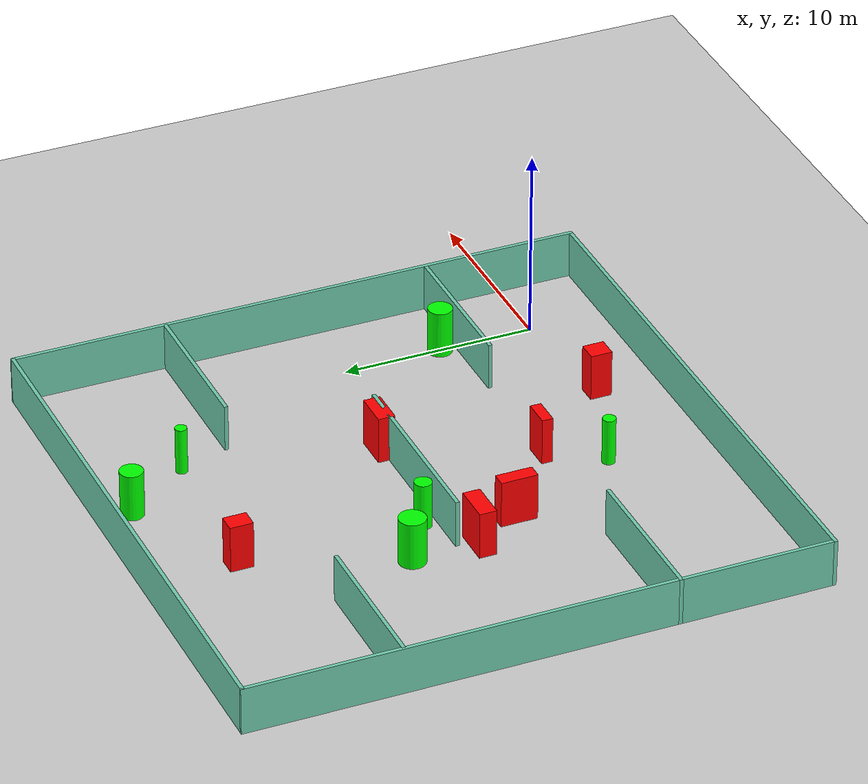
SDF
<sdf version="1.7">
 <world name="default">
  <light name="sun" type="directional">
   <pose>0 0 10 0 -0 0</pose>
   <diffuse>0.8 0.8 0.8 1</diffuse>
   <specular>0.2 0.2 0.2 1</specular>
   <attenuation>
    <range>1000</range>
    <constant>0.9</constant>
    <linear>0.01</linear>
    <quadratic>0.001</quadratic>
   </attenuation>
   <direction>-0.5 0.1 -0.9</direction>
   <spot><inner_angle>0</inner_angle><outer_angle>0</outer_angle><falloff>0</falloff></spot>
  </light>
  <model name="ground_plane">
   <static>1</static>
   <link name="link">
    <collision name="collision">
     <geometry><plane><normal>0 0 1</normal><size>100 100</size></plane></geometry>
     <surface>
      <contact><collide_bitmask>65535</collide_bitmask></contact>
      <friction><ode><mu>100</mu><mu2>50</mu2></ode></friction>
     </surface>
    </collision>
    <visual name="visual">
     <cast_shadows>0</cast_shadows>
     <geometry><plane><normal>0 0 1</normal><size>100 100</size></plane></geometry>
     <material>
      <script><uri>file://media/materials/scripts/gazebo.material</uri><name>Gazebo/Grey</name></script>
     </material>
    </visual>
   </link>
  </model>
  <gravity>0 0 -9.8</gravity>
  <magnetic_field>6e-06 2.3e-05 -4.2e-05</magnetic_field>
  <atmosphere type="adiabatic"/>
  <physics type="ode">
   <max_step_size>0.001</max_step_size>
   <real_time_factor>1</real_time_factor>
   <real_time_update_rate>1000</real_time_update_rate>
  </physics>
  <scene><ambient>0.4 0.4 0.4 1</ambient><background>0.7 0.7 0.7 1</background><shadows>1</shadows></scene>
  <spherical_coordinates>
   <surface_model>EARTH_WGS84</surface_model>
   <latitude_deg>0</latitude_deg>
   <longitude_deg>0</longitude_deg>
   <elevation>0</elevation>
   <heading_deg>0</heading_deg>
  </spherical_coordinates>
  <model name="my_base_walls">
   <link name="Wall_10">
    <collision name="Wall_10_Collision">
     <geometry><box><size>8.2 0.2 2.5</size></box></geometry>
     <pose>0 0 1.25 0 -0 0</pose>
    </collision>
    <visual name="Wall_10_Visual">
     <pose>0 0 1.25 0 -0 0</pose>
     <geometry><box><size>8.2 0.2 2.5</size></box></geometry>
     <material>
      <script><uri>file://media/materials/scripts/gazebo.material</uri><name>Gazebo/Grey</name></script>
      <ambient>0.435294 0.796078 0.67451 1</ambient>
     </material>
     <meta><layer>0</layer></meta>
    </visual>
    <pose>-11 -7 0 0 -0 0</pose>
   </link>
   <link name="Wall_12">
    <collision name="Wall_12_Collision">
     <geometry><box><size>8.2 0.2 2.5</size></box></geometry>
     <pose>0 0 1.25 0 -0 0</pose>
    </collision>
    <visual name="Wall_12_Visual">
     <pose>0 0 1.25 0 -0 0</pose>
     <geometry><box><size>8.2 0.2 2.5</size></box></geometry>
     <material>
      <script><uri>file://media/materials/scripts/gazebo.material</uri><name>Gazebo/Grey</name></script>
      <ambient>0.435294 0.796078 0.67451 1</ambient>
     </material>
     <meta><layer>0</layer></meta>
    </visual>
    <pose>-11 7 0 0 -0 0</pose>
   </link>
   <link name="Wall_14">
    <collision name="Wall_14_Collision">
     <geometry><box><size>8.2 0.2 2.5</size></box></geometry>
     <pose>0 0 1.25 0 -0 0</pose>
    </collision>
    <visual name="Wall_14_Visual">
     <pose>0 0 1.25 0 -0 0</pose>
     <geometry><box><size>8.2 0.2 2.5</size></box></geometry>
     <material>
      <script><uri>file://media/materials/scripts/gazebo.material</uri><name>Gazebo/Grey</name></script>
      <ambient>0.435294 0.796078 0.67451 1</ambient>
     </material>
     <meta><layer>0</layer></meta>
    </visual>
    <pose>11 7 0 0 -0 3.14159</pose>
   </link>
   <link name="Wall_16">
    <collision name="Wall_16_Collision">
     <geometry><box><size>10.2 0.2 2.5</size></box></geometry>
     <pose>0 0 1.25 0 -0 0</pose>
    </collision>
    <visual name="Wall_16_Visual">
     <pose>0 0 1.25 0 -0 0</pose>
     <geometry><box><size>10.2 0.2 2.5</size></box></geometry>
     <material>
      <script><uri>file://media/materials/scripts/gazebo.material</uri><name>Gazebo/Grey</name></script>
      <ambient>0.435294 0.796078 0.67451 1</ambient>
     </material>
     <meta><layer>0</layer></meta>
    </visual>
    <pose>0 0 0 0 -0 3.14159</pose>
   </link>
   <link name="Wall_2">
    <collision name="Wall_2_Collision">
     <geometry><box><size>30.2 0.2 2.5</size></box></geometry>
     <pose>0 0 1.25 0 -0 0</pose>
    </collision>
    <visual name="Wall_2_Visual">
     <pose>0 0 1.25 0 -0 0</pose>
     <geometry><box><size>30.2 0.2 2.5</size></box></geometry>
     <material>
      <script><uri>file://media/materials/scripts/gazebo.material</uri><name>Gazebo/Grey</name></script>
      <ambient>0.435294 0.796078 0.67451 1</ambient>
     </material>
     <meta><layer>0</layer></meta>
    </visual>
    <pose>0 -15 0 0 -0 3.14159</pose>
   </link>
   <link name="Wall_3">
    <collision name="Wall_3_Collision">
     <geometry><box><size>30.2 0.2 2.5</size></box></geometry>
     <pose>0 0 1.25 0 -0 0</pose>
    </collision>
    <visual name="Wall_3_Visual">
     <pose>0 0 1.25 0 -0 0</pose>
     <geometry><box><size>30.2 0.2 2.5</size></box></geometry>
     <material>
      <script><uri>file://media/materials/scripts/gazebo.material</uri><name>Gazebo/Grey</name></script>
      <ambient>0.435294 0.796078 0.67451 1</ambient>
     </material>
     <meta><layer>0</layer></meta>
    </visual>
    <pose>-15 0 0 0 -0 1.5708</pose>
   </link>
   <link name="Wall_4">
    <collision name="Wall_4_Collision">
     <geometry><box><size>30.2 0.2 2.5</size></box></geometry>
     <pose>0 0 1.25 0 -0 0</pose>
    </collision>
    <visual name="Wall_4_Visual">
     <pose>0 0 1.25 0 -0 0</pose>
     <geometry><box><size>30.2 0.2 2.5</size></box></geometry>
     <material>
      <script><uri>file://media/materials/scripts/gazebo.material</uri><name>Gazebo/Grey</name></script>
      <ambient>0.435294 0.796078 0.67451 1</ambient>
     </material>
     <meta><layer>0</layer></meta>
    </visual>
    <pose>0 15 0 0 -0 0</pose>
   </link>
   <link name="Wall_6">
    <collision name="Wall_6_Collision">
     <geometry><box><size>30.2 0.2 2.5</size></box></geometry>
     <pose>0 0 1.25 0 -0 0</pose>
    </collision>
    <visual name="Wall_6_Visual">
     <pose>0 0 1.25 0 -0 0</pose>
     <geometry><box><size>30.2 0.2 2.5</size></box></geometry>
     <material>
      <script><uri>file://media/materials/scripts/gazebo.material</uri><name>Gazebo/Grey</name></script>
      <ambient>0.435294 0.796078 0.67451 1</ambient>
     </material>
     <meta><layer>0</layer></meta>
    </visual>
    <pose>15 0 0 0 -0 1.5708</pose>
   </link>
   <link name="Wall_8">
    <collision name="Wall_8_Collision">
     <geometry><box><size>8.2 0.2 2.5</size></box></geometry>
     <pose>0 0 1.25 0 -0 0</pose>
    </collision>
    <visual name="Wall_8_Visual">
     <pose>0 0 1.25 0 -0 0</pose>
     <geometry><box><size>8.2 0.2 2.5</size></box></geometry>
     <material>
      <script><uri>file://media/materials/scripts/gazebo.material</uri><name>Gazebo/Grey</name></script>
      <ambient>0.435294 0.796078 0.67451 1</ambient>
     </material>
     <meta><layer>0</layer></meta>
    </visual>
    <pose>11 -7 0 0 -0 3.14159</pose>
   </link>
   <static>1</static>
   <pose>-11 11 0 0 -0 0</pose>
  </model>
  <model name="cylinder1">
   <static>1</static>
   <link name="link">
    <inertial>
     <mass>1</mass>
     <inertia><ixx>0.5</ixx><ixy>0</ixy><ixz>0</ixz><iyy>0.5</iyy><iyz>0</iyz><izz>1</izz></inertia>
    </inertial>
    <collision name="collision">
     <geometry><cylinder><radius>0.33670208495337595</radius><length>2.5</length></cylinder></geometry>
    </collision>
    <visual name="visual">
     <geometry><cylinder><radius>0.33670208495337595</radius><length>2.5</length></cylinder></geometry>
     <material>
      <ambient>0 1 0 1</ambient>
      <diffuse>0 1 0 1</diffuse>
      <specular>0.1 0.1 0.1 1</specular>
      <emissive>0 0 0 0</emissive>
     </material>
    </visual>
   </link>
   <pose>-12.327859142583097 1.3601216515396732 1.25 0 0 0</pose>
  </model>
  <model name="cylinder2">
   <static>1</static>
   <link name="link">
    <inertial>
     <mass>1</mass>
     <inertia><ixx>0.5</ixx><ixy>0</ixy><ixz>0</ixz><iyy>0.5</iyy><iyz>0</iyz><izz>1</izz></inertia>
    </inertial>
    <collision name="collision">
     <geometry><cylinder><radius>0.597387499470974</radius><length>2.5</length></cylinder></geometry>
    </collision>
    <visual name="visual">
     <geometry><cylinder><radius>0.597387499470974</radius><length>2.5</length></cylinder></geometry>
     <material>
      <ambient>0 1 0 1</ambient>
      <diffuse>0 1 0 1</diffuse>
      <specular>0.1 0.1 0.1 1</specular>
      <emissive>0 0 0 0</emissive>
     </material>
    </visual>
   </link>
   <pose>-7.469600924054129 24.215969549338215 1.25 0 0 0</pose>
  </model>
  <model name="cylinder3">
   <static>1</static>
   <link name="link">
    <inertial>
     <mass>1</mass>
     <inertia><ixx>0.5</ixx><ixy>0</ixy><ixz>0</ixz><iyy>0.5</iyy><iyz>0</iyz><izz>1</izz></inertia>
    </inertial>
    <collision name="collision">
     <geometry><cylinder><radius>0.6931774613121877</radius><length>2.5</length></cylinder></geometry>
    </collision>
    <visual name="visual">
     <geometry><cylinder><radius>0.6931774613121877</radius><length>2.5</length></cylinder></geometry>
     <material>
      <ambient>0 1 0 1</ambient>
      <diffuse>0 1 0 1</diffuse>
      <specular>0.1 0.1 0.1 1</specular>
      <emissive>0 0 0 0</emissive>
     </material>
    </visual>
   </link>
   <pose>-16.42720320757971 13.465898578787428 1.25 0 0 0</pose>
  </model>
  <model name="cylinder4">
   <static>1</static>
   <link name="link">
    <inertial>
     <mass>1</mass>
     <inertia><ixx>0.5</ixx><ixy>0</ixy><ixz>0</ixz><iyy>0.5</iyy><iyz>0</iyz><izz>1</izz></inertia>
    </inertial>
    <collision name="collision">
     <geometry><cylinder><radius>0.3010782303816384</radius><length>2.5</length></cylinder></geometry>
    </collision>
    <visual name="visual">
     <geometry><cylinder><radius>0.3010782303816384</radius><length>2.5</length></cylinder></geometry>
     <material>
      <ambient>0 1 0 1</ambient>
      <diffuse>0 1 0 1</diffuse>
      <specular>0.1 0.1 0.1 1</specular>
      <emissive>0 0 0 0</emissive>
     </material>
    </visual>
   </link>
   <pose>-4.944769657736865 20.68723550291864 1.25 0 0 0</pose>
  </model>
  <model name="cylinder5">
   <static>1</static>
   <link name="link">
    <inertial>
     <mass>1</mass>
     <inertia><ixx>0.5</ixx><ixy>0</ixy><ixz>0</ixz><iyy>0.5</iyy><iyz>0</iyz><izz>1</izz></inertia>
    </inertial>
    <collision name="collision">
     <geometry><cylinder><radius>0.44258193884419567</radius><length>2.5</length></cylinder></geometry>
    </collision>
    <visual name="visual">
     <geometry><cylinder><radius>0.44258193884419567</radius><length>2.5</length></cylinder></geometry>
     <material>
      <ambient>0 1 0 1</ambient>
      <diffuse>0 1 0 1</diffuse>
      <specular>0.1 0.1 0.1 1</specular>
      <emissive>0 0 0 0</emissive>
     </material>
    </visual>
   </link>
   <pose>-13.834669666998712 11.803132762035967 1.25 0 0 0</pose>
  </model>
  <model name="cylinder6">
   <static>1</static>
   <link name="link">
    <inertial>
     <mass>1</mass>
     <inertia><ixx>0.5</ixx><ixy>0</ixy><ixz>0</ixz><iyy>0.5</iyy><iyz>0</iyz><izz>1</izz></inertia>
    </inertial>
    <collision name="collision">
     <geometry><cylinder><radius>0.62601063968225</radius><length>2.5</length></cylinder></geometry>
    </collision>
    <visual name="visual">
     <geometry><cylinder><radius>0.62601063968225</radius><length>2.5</length></cylinder></geometry>
     <material>
      <ambient>0 1 0 1</ambient>
      <diffuse>0 1 0 1</diffuse>
      <specular>0.1 0.1 0.1 1</specular>
      <emissive>0 0 0 0</emissive>
     </material>
    </visual>
   </link>
   <pose>0.015350404931691486 4.909285335457842 1.25 0 0 0</pose>
  </model>
  <model name="box1">
   <static>1</static>
   <link name="link">
    <inertial>
     <mass>1</mass>
     <inertia><ixx>0.083</ixx><ixy>0</ixy><ixz>0</ixz><iyy>0.083</iyy><iyz>0</iyz><izz>0.083</izz></inertia>
    </inertial>
    <collision name="collision">
     <geometry><box><size>0.9580196019523026 1.2011278015918936 2.5</size></box></geometry>
    </collision>
    <visual name="visual">
     <geometry><box><size>0.9580196019523026 1.2011278015918936 2.5</size></box></geometry>
     <material>
      <ambient>1 0 0 1</ambient>
      <diffuse>1 0 0 1</diffuse>
      <specular>0.1 0.1 0.1 1</specular>
      <emissive>0 0 0 0</emissive>
     </material>
    </visual>
    <sensor name="my_contact" type="contact">
     <contact><collision>box_collision</collision><topic>__default_topic__</topic></contact>
    </sensor>
   </link>
   <pose>-13.396812646154078 21.117585567142115 1.25 0 0 0</pose>
  </model>
  <model name="box2">
   <static>1</static>
   <link name="link">
    <inertial>
     <mass>1</mass>
     <inertia><ixx>0.083</ixx><ixy>0</ixy><ixz>0</ixz><iyy>0.083</iyy><iyz>0</iyz><izz>0.083</izz></inertia>
    </inertial>
    <collision name="collision">
     <geometry><box><size>1.0499685115590989 1.1217929580591828 2.5</size></box></geometry>
    </collision>
    <visual name="visual">
     <geometry><box><size>1.0499685115590989 1.1217929580591828 2.5</size></box></geometry>
     <material>
      <ambient>1 0 0 1</ambient>
      <diffuse>1 0 0 1</diffuse>
      <specular>0.1 0.1 0.1 1</specular>
      <emissive>0 0 0 0</emissive>
     </material>
    </visual>
    <sensor name="my_contact" type="contact">
     <contact><collision>box_collision</collision><topic>__default_topic__</topic></contact>
    </sensor>
   </link>
   <pose>-6.493681019623235 -0.6814980639744359 1.25 0 0 0</pose>
  </model>
  <model name="box3">
   <static>1</static>
   <link name="link">
    <inertial>
     <mass>1</mass>
     <inertia><ixx>0.083</ixx><ixy>0</ixy><ixz>0</ixz><iyy>0.083</iyy><iyz>0</iyz><izz>0.083</izz></inertia>
    </inertial>
    <collision name="collision">
     <geometry><box><size>1.4426676079477927 0.5676244388771055 2.5</size></box></geometry>
    </collision>
    <visual name="visual">
     <geometry><box><size>1.4426676079477927 0.5676244388771055 2.5</size></box></geometry>
     <material>
      <ambient>1 0 0 1</ambient>
      <diffuse>1 0 0 1</diffuse>
      <specular>0.1 0.1 0.1 1</specular>
      <emissive>0 0 0 0</emissive>
     </material>
    </visual>
    <sensor name="my_contact" type="contact">
     <contact><collision>box_collision</collision><topic>__default_topic__</topic></contact>
    </sensor>
   </link>
   <pose>-10.557310612091783 4.151166238959517 1.25 0 0 0</pose>
  </model>
  <model name="box4">
   <static>1</static>
   <link name="link">
    <inertial>
     <mass>1</mass>
     <inertia><ixx>0.083</ixx><ixy>0</ixy><ixz>0</ixz><iyy>0.083</iyy><iyz>0</iyz><izz>0.083</izz></inertia>
    </inertial>
    <collision name="collision">
     <geometry><box><size>1.8613311862376305 0.8782360118893278 2.5</size></box></geometry>
    </collision>
    <visual name="visual">
     <geometry><box><size>1.8613311862376305 0.8782360118893278 2.5</size></box></geometry>
     <material>
      <ambient>1 0 0 1</ambient>
      <diffuse>1 0 0 1</diffuse>
      <specular>0.1 0.1 0.1 1</specular>
      <emissive>0 0 0 0</emissive>
     </material>
    </visual>
    <sensor name="my_contact" type="contact">
     <contact><collision>box_collision</collision><topic>__default_topic__</topic></contact>
    </sensor>
   </link>
   <pose>-7.122879698072374 11.22684840274152 1.25 0 0 0</pose>
  </model>
  <model name="box5">
   <static>1</static>
   <link name="link">
    <inertial>
     <mass>1</mass>
     <inertia><ixx>0.083</ixx><ixy>0</ixy><ixz>0</ixz><iyy>0.083</iyy><iyz>0</iyz><izz>0.083</izz></inertia>
    </inertial>
    <collision name="collision">
     <geometry><box><size>2.002590767119467 0.8917300096001881 2.5</size></box></geometry>
    </collision>
    <visual name="visual">
     <geometry><box><size>2.002590767119467 0.8917300096001881 2.5</size></box></geometry>
     <material>
      <ambient>1 0 0 1</ambient>
      <diffuse>1 0 0 1</diffuse>
      <specular>0.1 0.1 0.1 1</specular>
      <emissive>0 0 0 0</emissive>
     </material>
    </visual>
    <sensor name="my_contact" type="contact">
     <contact><collision>box_collision</collision><topic>__default_topic__</topic></contact>
    </sensor>
   </link>
   <pose>-16.46467156267687 10.016732031068548 1.25 0 0 0</pose>
  </model>
  <model name="box6">
   <static>1</static>
   <link name="link">
    <inertial>
     <mass>1</mass>
     <inertia><ixx>0.083</ixx><ixy>0</ixy><ixz>0</ixz><iyy>0.083</iyy><iyz>0</iyz><izz>0.083</izz></inertia>
    </inertial>
    <collision name="collision">
     <geometry><box><size>0.7412126434460671 1.9159205515971198 2.5</size></box></geometry>
    </collision>
    <visual name="visual">
     <geometry><box><size>0.7412126434460671 1.9159205515971198 2.5</size></box></geometry>
     <material>
      <ambient>1 0 0 1</ambient>
      <diffuse>1 0 0 1</diffuse>
      <specular>0.1 0.1 0.1 1</specular>
      <emissive>0 0 0 0</emissive>
     </material>
    </visual>
    <sensor name="my_contact" type="contact">
     <contact><collision>box_collision</collision><topic>__default_topic__</topic></contact>
    </sensor>
   </link>
   <pose>-15.087292799862553 7.489116121245491 1.25 0 0 0</pose>
  </model>
 </world>
</sdf>
